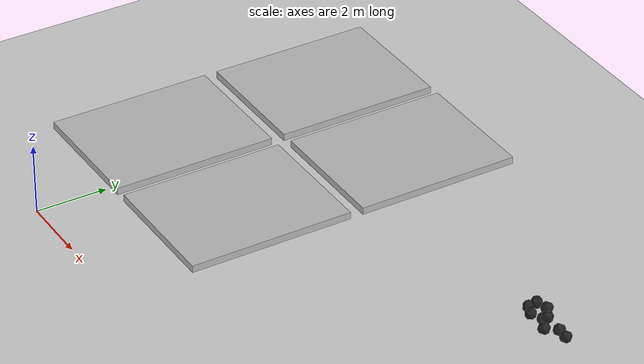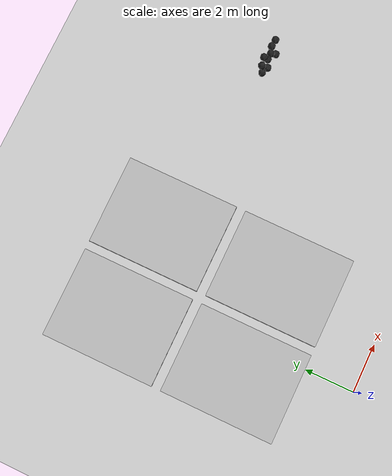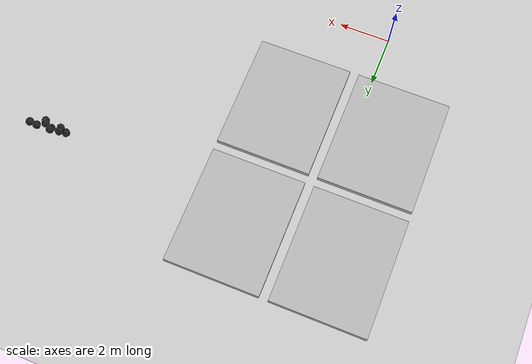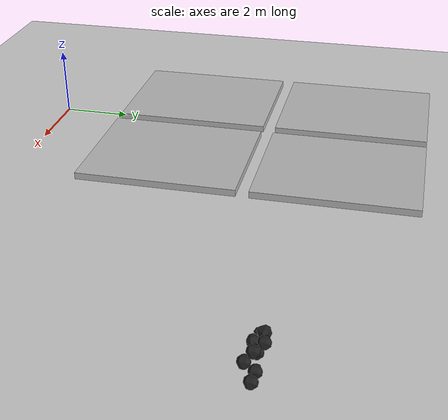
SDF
<sdf version="1.7">
 <world name="default">
  <model name="ground_plane">
   <static>1</static>
   <link name="link">
    <collision name="collision">
     <geometry><plane><normal>0 0 1</normal><size>100 100</size></plane></geometry>
     <surface><friction><ode><mu>100</mu><mu2>50</mu2></ode></friction></surface>
    </collision>
    <visual name="visual">
     <cast_shadows>0</cast_shadows>
     <geometry><plane><normal>0 0 1</normal><size>100 100</size></plane></geometry>
     <material>
      <script><uri>file://media/materials/scripts/gazebo.material</uri><name>Gazebo/Grey</name></script>
     </material>
    </visual>
   </link>
  </model>
  <model name="haoduomiantiaa_3">
   <link name="link_0">
    <inertial>
     <mass>0.2</mass>
     <inertia>
      <ixx>0.166667</ixx>
      <ixy>0</ixy>
      <ixz>0</ixz>
      <iyy>0.166667</iyy>
      <iyz>0</iyz>
      <izz>0.166667</izz>
     </inertia>
    </inertial>
    <visual name="visual">
     <geometry>
      <mesh>
       <uri>/home/lihaoyang/catkin_ws/src/pudong_gazebo/world/stl/haoduomianti.stl</uri>
       <scale>1 1 1</scale>
      </mesh>
     </geometry>
     <material>
      <lighting>1</lighting>
      <script><uri>file://media/materials/scripts/gazebo.material</uri><name>Gazebo/Black</name></script>
      <shader type="pixel"><normal_map>__default__</normal_map></shader>
      <ambient>0.3 0.3 0.3 1</ambient>
      <diffuse>0.7 0.7 0.7 1</diffuse>
      <specular>0.01 0.01 0.01 1</specular>
      <emissive>0 0 0 1</emissive>
     </material>
    </visual>
    <collision name="collision">
     <geometry>
      <mesh>
       <uri>/home/lihaoyang/catkin_ws/src/pudong_gazebo/world/stl/haoduomianti.stl</uri>
       <scale>1 1 1</scale>
      </mesh>
     </geometry>
     <surface>
      <friction>
       <ode><mu>1</mu><mu2>1</mu2><fdir1>0 0 0</fdir1><slip1>0</slip1><slip2>0</slip2></ode>
       <torsional>
        <coefficient>1</coefficient>
        <patch_radius>0</patch_radius>
        <surface_radius>0</surface_radius>
        <use_patch_radius>1</use_patch_radius>
        <ode><slip>0</slip></ode>
       </torsional>
      </friction>
      <bounce><restitution_coefficient>0</restitution_coefficient><threshold>1e+06</threshold></bounce>
      <contact>
       <collide_without_contact>0</collide_without_contact>
       <collide_without_contact_bitmask>1</collide_without_contact_bitmask>
       <collide_bitmask>1</collide_bitmask>
       <ode>
        <soft_cfm>0</soft_cfm>
        <soft_erp>0.2</soft_erp>
        <kp>1e+13</kp>
        <kd>1</kd>
        <max_vel>0.01</max_vel>
        <min_depth>0</min_depth>
       </ode>
       <bullet>
        <split_impulse>1</split_impulse>
        <split_impulse_penetration_threshold>-0.01</split_impulse_penetration_threshold>
        <soft_cfm>0</soft_cfm>
        <soft_erp>0.2</soft_erp>
        <kp>1e+13</kp>
        <kd>1</kd>
       </bullet>
      </contact>
     </surface>
    </collision>
   </link>
   <static>0</static>
   <pose>10.9655 8.29821 -0.115467 0.785455 -0.615501 -1.08818</pose>
  </model>
  <model name="haoduomiantiaa_8">
   <link name="link_0">
    <inertial>
     <mass>0.2</mass>
     <inertia>
      <ixx>0.166667</ixx>
      <ixy>0</ixy>
      <ixz>0</ixz>
      <iyy>0.166667</iyy>
      <iyz>0</iyz>
      <izz>0.166667</izz>
     </inertia>
    </inertial>
    <visual name="visual">
     <geometry>
      <mesh>
       <uri>/home/lihaoyang/catkin_ws/src/pudong_gazebo/world/stl/haoduomianti.stl</uri>
       <scale>1 1 1</scale>
      </mesh>
     </geometry>
     <material>
      <lighting>1</lighting>
      <script><uri>file://media/materials/scripts/gazebo.material</uri><name>Gazebo/Black</name></script>
      <shader type="pixel"><normal_map>__default__</normal_map></shader>
      <ambient>0.3 0.3 0.3 1</ambient>
      <diffuse>0.7 0.7 0.7 1</diffuse>
      <specular>0.01 0.01 0.01 1</specular>
      <emissive>0 0 0 1</emissive>
     </material>
    </visual>
    <collision name="collision">
     <geometry>
      <mesh>
       <uri>/home/lihaoyang/catkin_ws/src/pudong_gazebo/world/stl/haoduomianti.stl</uri>
       <scale>1 1 1</scale>
      </mesh>
     </geometry>
     <surface>
      <friction>
       <ode><mu>1</mu><mu2>1</mu2><fdir1>0 0 0</fdir1><slip1>0</slip1><slip2>0</slip2></ode>
       <torsional>
        <coefficient>1</coefficient>
        <patch_radius>0</patch_radius>
        <surface_radius>0</surface_radius>
        <use_patch_radius>1</use_patch_radius>
        <ode><slip>0</slip></ode>
       </torsional>
      </friction>
      <bounce><restitution_coefficient>0</restitution_coefficient><threshold>1e+06</threshold></bounce>
      <contact>
       <collide_without_contact>0</collide_without_contact>
       <collide_without_contact_bitmask>1</collide_without_contact_bitmask>
       <collide_bitmask>1</collide_bitmask>
       <ode>
        <soft_cfm>0</soft_cfm>
        <soft_erp>0.2</soft_erp>
        <kp>1e+13</kp>
        <kd>1</kd>
        <max_vel>0.01</max_vel>
        <min_depth>0</min_depth>
       </ode>
       <bullet>
        <split_impulse>1</split_impulse>
        <split_impulse_penetration_threshold>-0.01</split_impulse_penetration_threshold>
        <soft_cfm>0</soft_cfm>
        <soft_erp>0.2</soft_erp>
        <kp>1e+13</kp>
        <kd>1</kd>
       </bullet>
      </contact>
     </surface>
    </collision>
   </link>
   <static>0</static>
   <pose>10.5608 8.64737 0.118805 0.795752 -0.627102 3.07288</pose>
  </model>
  <model name="haoduomiantiaa_26">
   <link name="link_0">
    <inertial>
     <mass>0.2</mass>
     <inertia>
      <ixx>0.166667</ixx>
      <ixy>0</ixy>
      <ixz>0</ixz>
      <iyy>0.166667</iyy>
      <iyz>0</iyz>
      <izz>0.166667</izz>
     </inertia>
    </inertial>
    <visual name="visual">
     <geometry>
      <mesh>
       <uri>/home/lihaoyang/catkin_ws/src/pudong_gazebo/world/stl/haoduomianti.stl</uri>
       <scale>1 1 1</scale>
      </mesh>
     </geometry>
     <material>
      <lighting>1</lighting>
      <script><uri>file://media/materials/scripts/gazebo.material</uri><name>Gazebo/Black</name></script>
      <shader type="pixel"><normal_map>__default__</normal_map></shader>
      <ambient>0.3 0.3 0.3 1</ambient>
      <diffuse>0.7 0.7 0.7 1</diffuse>
      <specular>0.01 0.01 0.01 1</specular>
      <emissive>0 0 0 1</emissive>
     </material>
    </visual>
    <collision name="collision">
     <geometry>
      <mesh>
       <uri>/home/lihaoyang/catkin_ws/src/pudong_gazebo/world/stl/haoduomianti.stl</uri>
       <scale>1 1 1</scale>
      </mesh>
     </geometry>
     <surface>
      <friction>
       <ode><mu>1</mu><mu2>1</mu2><fdir1>0 0 0</fdir1><slip1>0</slip1><slip2>0</slip2></ode>
       <torsional>
        <coefficient>1</coefficient>
        <patch_radius>0</patch_radius>
        <surface_radius>0</surface_radius>
        <use_patch_radius>1</use_patch_radius>
        <ode><slip>0</slip></ode>
       </torsional>
      </friction>
      <bounce><restitution_coefficient>0</restitution_coefficient><threshold>1e+06</threshold></bounce>
      <contact>
       <collide_without_contact>0</collide_without_contact>
       <collide_without_contact_bitmask>1</collide_without_contact_bitmask>
       <collide_bitmask>1</collide_bitmask>
       <ode>
        <soft_cfm>0</soft_cfm>
        <soft_erp>0.2</soft_erp>
        <kp>1e+13</kp>
        <kd>1</kd>
        <max_vel>0.01</max_vel>
        <min_depth>0</min_depth>
       </ode>
       <bullet>
        <split_impulse>1</split_impulse>
        <split_impulse_penetration_threshold>-0.01</split_impulse_penetration_threshold>
        <soft_cfm>0</soft_cfm>
        <soft_erp>0.2</soft_erp>
        <kp>1e+13</kp>
        <kd>1</kd>
       </bullet>
      </contact>
     </surface>
    </collision>
   </link>
   <static>0</static>
   <pose>11.5111 8.56032 -0.11547 0.785401 -0.615479 3.02771</pose>
  </model>
  <model name="haoduomiantiaa_28">
   <link name="link_0">
    <inertial>
     <mass>0.2</mass>
     <inertia>
      <ixx>0.166667</ixx>
      <ixy>0</ixy>
      <ixz>0</ixz>
      <iyy>0.166667</iyy>
      <iyz>0</iyz>
      <izz>0.166667</izz>
     </inertia>
    </inertial>
    <visual name="visual">
     <geometry>
      <mesh>
       <uri>/home/lihaoyang/catkin_ws/src/pudong_gazebo/world/stl/haoduomianti.stl</uri>
       <scale>1 1 1</scale>
      </mesh>
     </geometry>
     <material>
      <lighting>1</lighting>
      <script><uri>file://media/materials/scripts/gazebo.material</uri><name>Gazebo/Black</name></script>
      <shader type="pixel"><normal_map>__default__</normal_map></shader>
      <ambient>0.3 0.3 0.3 1</ambient>
      <diffuse>0.7 0.7 0.7 1</diffuse>
      <specular>0.01 0.01 0.01 1</specular>
      <emissive>0 0 0 1</emissive>
     </material>
    </visual>
    <collision name="collision">
     <geometry>
      <mesh>
       <uri>/home/lihaoyang/catkin_ws/src/pudong_gazebo/world/stl/haoduomianti.stl</uri>
       <scale>1 1 1</scale>
      </mesh>
     </geometry>
     <surface>
      <friction>
       <ode><mu>1</mu><mu2>1</mu2><fdir1>0 0 0</fdir1><slip1>0</slip1><slip2>0</slip2></ode>
       <torsional>
        <coefficient>1</coefficient>
        <patch_radius>0</patch_radius>
        <surface_radius>0</surface_radius>
        <use_patch_radius>1</use_patch_radius>
        <ode><slip>0</slip></ode>
       </torsional>
      </friction>
      <bounce><restitution_coefficient>0</restitution_coefficient><threshold>1e+06</threshold></bounce>
      <contact>
       <collide_without_contact>0</collide_without_contact>
       <collide_without_contact_bitmask>1</collide_without_contact_bitmask>
       <collide_bitmask>1</collide_bitmask>
       <ode>
        <soft_cfm>0</soft_cfm>
        <soft_erp>0.2</soft_erp>
        <kp>1e+13</kp>
        <kd>1</kd>
        <max_vel>0.01</max_vel>
        <min_depth>0</min_depth>
       </ode>
       <bullet>
        <split_impulse>1</split_impulse>
        <split_impulse_penetration_threshold>-0.01</split_impulse_penetration_threshold>
        <soft_cfm>0</soft_cfm>
        <soft_erp>0.2</soft_erp>
        <kp>1e+13</kp>
        <kd>1</kd>
       </bullet>
      </contact>
     </surface>
    </collision>
   </link>
   <static>0</static>
   <pose>10.298 8.3599 -0.115601 0.785262 -0.615528 -2.77189</pose>
  </model>
  <model name="haoduomiantiaa_67">
   <link name="link_0">
    <inertial>
     <mass>0.2</mass>
     <inertia>
      <ixx>0.166667</ixx>
      <ixy>0</ixy>
      <ixz>0</ixz>
      <iyy>0.166667</iyy>
      <iyz>0</iyz>
      <izz>0.166667</izz>
     </inertia>
    </inertial>
    <visual name="visual">
     <geometry>
      <mesh>
       <uri>/home/lihaoyang/catkin_ws/src/pudong_gazebo/world/stl/haoduomianti.stl</uri>
       <scale>1 1 1</scale>
      </mesh>
     </geometry>
     <material>
      <lighting>1</lighting>
      <script><uri>file://media/materials/scripts/gazebo.material</uri><name>Gazebo/Black</name></script>
      <shader type="pixel"><normal_map>__default__</normal_map></shader>
      <ambient>0.3 0.3 0.3 1</ambient>
      <diffuse>0.7 0.7 0.7 1</diffuse>
      <specular>0.01 0.01 0.01 1</specular>
      <emissive>0 0 0 1</emissive>
     </material>
    </visual>
    <collision name="collision">
     <geometry>
      <mesh>
       <uri>/home/lihaoyang/catkin_ws/src/pudong_gazebo/world/stl/haoduomianti.stl</uri>
       <scale>1 1 1</scale>
      </mesh>
     </geometry>
     <surface>
      <friction>
       <ode><mu>1</mu><mu2>1</mu2><fdir1>0 0 0</fdir1><slip1>0</slip1><slip2>0</slip2></ode>
       <torsional>
        <coefficient>1</coefficient>
        <patch_radius>0</patch_radius>
        <surface_radius>0</surface_radius>
        <use_patch_radius>1</use_patch_radius>
        <ode><slip>0</slip></ode>
       </torsional>
      </friction>
      <bounce><restitution_coefficient>0</restitution_coefficient><threshold>1e+06</threshold></bounce>
      <contact>
       <collide_without_contact>0</collide_without_contact>
       <collide_without_contact_bitmask>1</collide_without_contact_bitmask>
       <collide_bitmask>1</collide_bitmask>
       <ode>
        <soft_cfm>0</soft_cfm>
        <soft_erp>0.2</soft_erp>
        <kp>1e+13</kp>
        <kd>1</kd>
        <max_vel>0.01</max_vel>
        <min_depth>0</min_depth>
       </ode>
       <bullet>
        <split_impulse>1</split_impulse>
        <split_impulse_penetration_threshold>-0.01</split_impulse_penetration_threshold>
        <soft_cfm>0</soft_cfm>
        <soft_erp>0.2</soft_erp>
        <kp>1e+13</kp>
        <kd>1</kd>
       </bullet>
      </contact>
     </surface>
    </collision>
   </link>
   <static>0</static>
   <pose>10.2153 8.60604 0.097191 0.894935 -0.655315 0.470199</pose>
  </model>
  <model name="haoduomiantiaa_75">
   <link name="link_0">
    <inertial>
     <mass>0.2</mass>
     <inertia>
      <ixx>0.166667</ixx>
      <ixy>0</ixy>
      <ixz>0</ixz>
      <iyy>0.166667</iyy>
      <iyz>0</iyz>
      <izz>0.166667</izz>
     </inertia>
    </inertial>
    <visual name="visual">
     <geometry>
      <mesh>
       <uri>/home/lihaoyang/catkin_ws/src/pudong_gazebo/world/stl/haoduomianti.stl</uri>
       <scale>1 1 1</scale>
      </mesh>
     </geometry>
     <material>
      <lighting>1</lighting>
      <script><uri>file://media/materials/scripts/gazebo.material</uri><name>Gazebo/Black</name></script>
      <shader type="pixel"><normal_map>__default__</normal_map></shader>
      <ambient>0.3 0.3 0.3 1</ambient>
      <diffuse>0.7 0.7 0.7 1</diffuse>
      <specular>0.01 0.01 0.01 1</specular>
      <emissive>0 0 0 1</emissive>
     </material>
    </visual>
    <collision name="collision">
     <geometry>
      <mesh>
       <uri>/home/lihaoyang/catkin_ws/src/pudong_gazebo/world/stl/haoduomianti.stl</uri>
       <scale>1 1 1</scale>
      </mesh>
     </geometry>
     <surface>
      <friction>
       <ode><mu>1</mu><mu2>1</mu2><fdir1>0 0 0</fdir1><slip1>0</slip1><slip2>0</slip2></ode>
       <torsional>
        <coefficient>1</coefficient>
        <patch_radius>0</patch_radius>
        <surface_radius>0</surface_radius>
        <use_patch_radius>1</use_patch_radius>
        <ode><slip>0</slip></ode>
       </torsional>
      </friction>
      <bounce><restitution_coefficient>0</restitution_coefficient><threshold>1e+06</threshold></bounce>
      <contact>
       <collide_without_contact>0</collide_without_contact>
       <collide_without_contact_bitmask>1</collide_without_contact_bitmask>
       <collide_bitmask>1</collide_bitmask>
       <ode>
        <soft_cfm>0</soft_cfm>
        <soft_erp>0.2</soft_erp>
        <kp>1e+13</kp>
        <kd>1</kd>
        <max_vel>0.01</max_vel>
        <min_depth>0</min_depth>
       </ode>
       <bullet>
        <split_impulse>1</split_impulse>
        <split_impulse_penetration_threshold>-0.01</split_impulse_penetration_threshold>
        <soft_cfm>0</soft_cfm>
        <soft_erp>0.2</soft_erp>
        <kp>1e+13</kp>
        <kd>1</kd>
       </bullet>
      </contact>
     </surface>
    </collision>
   </link>
   <static>0</static>
   <pose>10.8431 8.47368 0.081134 0.810983 -0.614243 -1.13043</pose>
  </model>
  <model name="haoduomiantiaa_90">
   <link name="link_0">
    <inertial>
     <mass>0.2</mass>
     <inertia>
      <ixx>0.166667</ixx>
      <ixy>0</ixy>
      <ixz>0</ixz>
      <iyy>0.166667</iyy>
      <iyz>0</iyz>
      <izz>0.166667</izz>
     </inertia>
    </inertial>
    <visual name="visual">
     <geometry>
      <mesh>
       <uri>/home/lihaoyang/catkin_ws/src/pudong_gazebo/world/stl/haoduomianti.stl</uri>
       <scale>1 1 1</scale>
      </mesh>
     </geometry>
     <material>
      <lighting>1</lighting>
      <script><uri>file://media/materials/scripts/gazebo.material</uri><name>Gazebo/Black</name></script>
      <shader type="pixel"><normal_map>__default__</normal_map></shader>
      <ambient>0.3 0.3 0.3 1</ambient>
      <diffuse>0.7 0.7 0.7 1</diffuse>
      <specular>0.01 0.01 0.01 1</specular>
      <emissive>0 0 0 1</emissive>
     </material>
    </visual>
    <collision name="collision">
     <geometry>
      <mesh>
       <uri>/home/lihaoyang/catkin_ws/src/pudong_gazebo/world/stl/haoduomianti.stl</uri>
       <scale>1 1 1</scale>
      </mesh>
     </geometry>
     <surface>
      <friction>
       <ode><mu>1</mu><mu2>1</mu2><fdir1>0 0 0</fdir1><slip1>0</slip1><slip2>0</slip2></ode>
       <torsional>
        <coefficient>1</coefficient>
        <patch_radius>0</patch_radius>
        <surface_radius>0</surface_radius>
        <use_patch_radius>1</use_patch_radius>
        <ode><slip>0</slip></ode>
       </torsional>
      </friction>
      <bounce><restitution_coefficient>0</restitution_coefficient><threshold>1e+06</threshold></bounce>
      <contact>
       <collide_without_contact>0</collide_without_contact>
       <collide_without_contact_bitmask>1</collide_without_contact_bitmask>
       <collide_bitmask>1</collide_bitmask>
       <ode>
        <soft_cfm>0</soft_cfm>
        <soft_erp>0.2</soft_erp>
        <kp>1e+13</kp>
        <kd>1</kd>
        <max_vel>0.01</max_vel>
        <min_depth>0</min_depth>
       </ode>
       <bullet>
        <split_impulse>1</split_impulse>
        <split_impulse_penetration_threshold>-0.01</split_impulse_penetration_threshold>
        <soft_cfm>0</soft_cfm>
        <soft_erp>0.2</soft_erp>
        <kp>1e+13</kp>
        <kd>1</kd>
       </bullet>
      </contact>
     </surface>
    </collision>
   </link>
   <static>0</static>
   <pose>10.6269 8.50331 -0.115499 0.785441 -0.615496 -1.13156</pose>
  </model>
  <model name="haoduomiantiaa_100">
   <link name="link_0">
    <inertial>
     <mass>0.2</mass>
     <inertia>
      <ixx>0.166667</ixx>
      <ixy>0</ixy>
      <ixz>0</ixz>
      <iyy>0.166667</iyy>
      <iyz>0</iyz>
      <izz>0.166667</izz>
     </inertia>
    </inertial>
    <visual name="visual">
     <geometry>
      <mesh>
       <uri>/home/lihaoyang/catkin_ws/src/pudong_gazebo/world/stl/haoduomianti.stl</uri>
       <scale>1 1 1</scale>
      </mesh>
     </geometry>
     <material>
      <lighting>1</lighting>
      <script><uri>file://media/materials/scripts/gazebo.material</uri><name>Gazebo/Black</name></script>
      <shader type="pixel"><normal_map>__default__</normal_map></shader>
      <ambient>0.3 0.3 0.3 1</ambient>
      <diffuse>0.7 0.7 0.7 1</diffuse>
      <specular>0.01 0.01 0.01 1</specular>
      <emissive>0 0 0 1</emissive>
     </material>
    </visual>
    <collision name="collision">
     <geometry>
      <mesh>
       <uri>/home/lihaoyang/catkin_ws/src/pudong_gazebo/world/stl/haoduomianti.stl</uri>
       <scale>1 1 1</scale>
      </mesh>
     </geometry>
     <surface>
      <friction>
       <ode><mu>1</mu><mu2>1</mu2><fdir1>0 0 0</fdir1><slip1>0</slip1><slip2>0</slip2></ode>
       <torsional>
        <coefficient>1</coefficient>
        <patch_radius>0</patch_radius>
        <surface_radius>0</surface_radius>
        <use_patch_radius>1</use_patch_radius>
        <ode><slip>0</slip></ode>
       </torsional>
      </friction>
      <bounce><restitution_coefficient>0</restitution_coefficient><threshold>1e+06</threshold></bounce>
      <contact>
       <collide_without_contact>0</collide_without_contact>
       <collide_without_contact_bitmask>1</collide_without_contact_bitmask>
       <collide_bitmask>1</collide_bitmask>
       <ode>
        <soft_cfm>0</soft_cfm>
        <soft_erp>0.2</soft_erp>
        <kp>1e+13</kp>
        <kd>1</kd>
        <max_vel>0.01</max_vel>
        <min_depth>0</min_depth>
       </ode>
       <bullet>
        <split_impulse>1</split_impulse>
        <split_impulse_penetration_threshold>-0.01</split_impulse_penetration_threshold>
        <soft_cfm>0</soft_cfm>
        <soft_erp>0.2</soft_erp>
        <kp>1e+13</kp>
        <kd>1</kd>
       </bullet>
      </contact>
     </surface>
    </collision>
   </link>
   <static>0</static>
   <pose>11.2039 8.58559 -0.115479 0.785398 -0.615476 3.12388</pose>
  </model>
  <model name="haoduomiantiaa_125">
   <link name="link_0">
    <inertial>
     <mass>0.2</mass>
     <inertia>
      <ixx>0.166667</ixx>
      <ixy>0</ixy>
      <ixz>0</ixz>
      <iyy>0.166667</iyy>
      <iyz>0</iyz>
      <izz>0.166667</izz>
     </inertia>
    </inertial>
    <visual name="visual">
     <geometry>
      <mesh>
       <uri>/home/lihaoyang/catkin_ws/src/pudong_gazebo/world/stl/haoduomianti.stl</uri>
       <scale>1 1 1</scale>
      </mesh>
     </geometry>
     <material>
      <lighting>1</lighting>
      <script><uri>file://media/materials/scripts/gazebo.material</uri><name>Gazebo/Black</name></script>
      <shader type="pixel"><normal_map>__default__</normal_map></shader>
      <ambient>0.3 0.3 0.3 1</ambient>
      <diffuse>0.7 0.7 0.7 1</diffuse>
      <specular>0.01 0.01 0.01 1</specular>
      <emissive>0 0 0 1</emissive>
     </material>
    </visual>
    <collision name="collision">
     <geometry>
      <mesh>
       <uri>/home/lihaoyang/catkin_ws/src/pudong_gazebo/world/stl/haoduomianti.stl</uri>
       <scale>1 1 1</scale>
      </mesh>
     </geometry>
     <surface>
      <friction>
       <ode><mu>1</mu><mu2>1</mu2><fdir1>0 0 0</fdir1><slip1>0</slip1><slip2>0</slip2></ode>
       <torsional>
        <coefficient>1</coefficient>
        <patch_radius>0</patch_radius>
        <surface_radius>0</surface_radius>
        <use_patch_radius>1</use_patch_radius>
        <ode><slip>0</slip></ode>
       </torsional>
      </friction>
      <bounce><restitution_coefficient>0</restitution_coefficient><threshold>1e+06</threshold></bounce>
      <contact>
       <collide_without_contact>0</collide_without_contact>
       <collide_without_contact_bitmask>1</collide_without_contact_bitmask>
       <collide_bitmask>1</collide_bitmask>
       <ode>
        <soft_cfm>0</soft_cfm>
        <soft_erp>0.2</soft_erp>
        <kp>1e+13</kp>
        <kd>1</kd>
        <max_vel>0.01</max_vel>
        <min_depth>0</min_depth>
       </ode>
       <bullet>
        <split_impulse>1</split_impulse>
        <split_impulse_penetration_threshold>-0.01</split_impulse_penetration_threshold>
        <soft_cfm>0</soft_cfm>
        <soft_erp>0.2</soft_erp>
        <kp>1e+13</kp>
        <kd>1</kd>
       </bullet>
      </contact>
     </surface>
    </collision>
   </link>
   <static>0</static>
   <pose>10.0256 8.47449 -0.115551 0.785403 -0.615471 2.51249</pose>
  </model>
  <model name="mud">
   <link name="link">
    <inertial>
     <inertia><ixx>0</ixx><ixy>0</ixy><ixz>0</ixz><iyy>0</iyy><iyz>0</iyz><izz>0</izz></inertia>
     <mass>0</mass>
    </inertial>
    <pose>0.047617 -0.019027 0 0 -0 0</pose>
    <visual name="visual_2">
     <pose>2 2.5 0 0 -0 0</pose>
     <cast_shadows>0</cast_shadows>
     <geometry><box><size>3.65677 4.62683 0.2</size></box></geometry>
     <material>
      <script>
       <uri>model://mud_box/materials/scripts</uri>
       <uri>model://mud_box/materials/textures</uri>
       <name>vrc/mud</name>
      </script>
      <shader type="pixel"/>
     </material>
    </visual>
    <visual name="visual_3">
     <pose>2 -2.5 0 0 -0 0</pose>
     <cast_shadows>0</cast_shadows>
     <geometry><box><size>3.65677 4.62683 0.2</size></box></geometry>
     <material>
      <script>
       <uri>model://mud_box/materials/scripts</uri>
       <uri>model://mud_box/materials/textures</uri>
       <name>vrc/mud</name>
      </script>
      <shader type="pixel"/>
     </material>
    </visual>
    <visual name="visual_1">
     <pose>-2 2.5 0 0 -0 0</pose>
     <cast_shadows>0</cast_shadows>
     <geometry><box><size>3.65677 4.62683 0.2</size></box></geometry>
     <material>
      <script>
       <uri>model://mud_box/materials/scripts</uri>
       <uri>model://mud_box/materials/textures</uri>
       <name>vrc/mud</name>
      </script>
      <shader type="pixel"/>
     </material>
    </visual>
    <visual name="visual_4">
     <pose>-2 -2.5 0 0 -0 0</pose>
     <cast_shadows>0</cast_shadows>
     <geometry><box><size>3.65677 4.62683 0.2</size></box></geometry>
     <material>
      <script>
       <uri>model://mud_box/materials/scripts</uri>
       <uri>model://mud_box/materials/textures</uri>
       <name>vrc/mud</name>
      </script>
      <shader type="pixel"/>
     </material>
    </visual>
    <collision name="collision">
     <geometry><box><size>7.31354 9.25365 0.2</size></box></geometry>
     <surface>
      <friction>
       <ode><mu>1</mu><mu2>1</mu2><fdir1>0 0 0</fdir1><slip1>0</slip1><slip2>0</slip2></ode>
       <torsional>
        <coefficient>1</coefficient>
        <patch_radius>0</patch_radius>
        <surface_radius>0</surface_radius>
        <use_patch_radius>1</use_patch_radius>
        <ode><slip>0</slip></ode>
       </torsional>
      </friction>
      <bounce><restitution_coefficient>0</restitution_coefficient><threshold>1e+06</threshold></bounce>
      <contact>
       <collide_without_contact>0</collide_without_contact>
       <collide_without_contact_bitmask>1</collide_without_contact_bitmask>
       <collide_bitmask>1</collide_bitmask>
       <ode>
        <soft_cfm>0</soft_cfm>
        <soft_erp>0.2</soft_erp>
        <kp>1e+13</kp>
        <kd>1</kd>
        <max_vel>0.01</max_vel>
        <min_depth>0</min_depth>
       </ode>
       <bullet>
        <split_impulse>1</split_impulse>
        <split_impulse_penetration_threshold>-0.01</split_impulse_penetration_threshold>
        <soft_cfm>0</soft_cfm>
        <soft_erp>0.2</soft_erp>
        <kp>1e+13</kp>
        <kd>1</kd>
       </bullet>
      </contact>
     </surface>
    </collision>
   </link>
   <static>1</static>
   <pose>0.696425 6.88849 0.238429 0 -0 0</pose>
  </model>
 </world>
</sdf>
